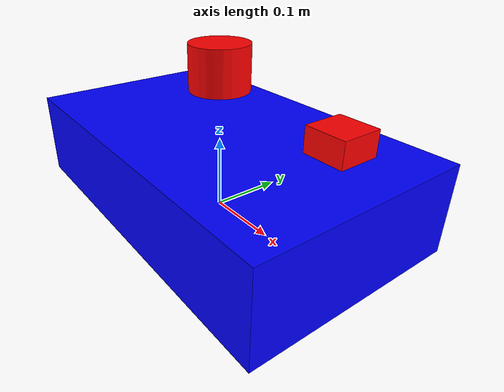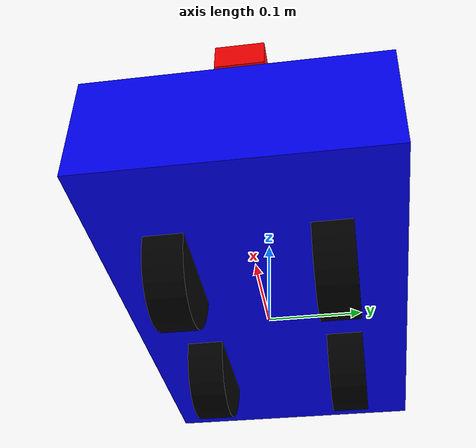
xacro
<?xml version="1.0"?>
<robot name="jetracer" xmlns:xacro="http://www.ros.org/wiki/xacro">

  <!-- Include properties and materials -->
  <xacro:include filename="jetracer_materials.xacro"/>
  <xacro:include filename="jetracer_properties.xacro"/>

  <!-- Base link -->
  <link name="base_link">
    <visual>
      <origin xyz="0 0 0" rpy="0 0 0"/>
      <geometry>
        <box size="0.001 0.001 0.001"/>
      </geometry>
    </visual>
  </link>

  <!-- Chassis -->
  <link name="chassis">
    <inertial>
      <mass value="${chassis_mass}"/>
      <origin xyz="0 0 0" rpy="0 0 0"/>
      <inertia ixx="${chassis_ixx}" ixy="0" ixz="0"
               iyy="${chassis_iyy}" iyz="0" izz="${chassis_izz}"/>
    </inertial>
    <visual>
      <origin xyz="0 0 0" rpy="0 0 0"/>
      <geometry>
        <box size="${chassis_length} ${chassis_width} ${chassis_height}"/>
      </geometry>
      <material name="blue"/>
    </visual>
    <collision>
      <origin xyz="0 0 0" rpy="0 0 0"/>
      <geometry>
        <box size="${chassis_length} ${chassis_width} ${chassis_height}"/>
      </geometry>
    </collision>
  </link>

  <joint name="base_to_chassis" type="fixed">
    <parent link="base_link"/>
    <child link="chassis"/>
    <origin xyz="0 0 ${chassis_height/2}" rpy="0 0 0"/>
  </joint>

  <!-- Front wheels (steered) -->
  <xacro:macro name="front_wheel" params="side reflect">
    <link name="front_wheel_${side}">
      <inertial>
        <mass value="${wheel_mass}"/>
        <origin xyz="0 0 0" rpy="${pi/2} 0 0"/>
        <inertia ixx="${wheel_ixx}" ixy="0" ixz="0"
                 iyy="${wheel_iyy}" iyz="0" izz="${wheel_izz}"/>
      </inertial>
      <visual>
        <origin xyz="0 0 0" rpy="${pi/2} 0 0"/>
        <geometry>
          <cylinder radius="${wheel_radius}" length="${wheel_width}"/>
        </geometry>
        <material name="black"/>
      </visual>
      <collision>
        <origin xyz="0 0 0" rpy="${pi/2} 0 0"/>
        <geometry>
          <cylinder radius="${wheel_radius}" length="${wheel_width}"/>
        </geometry>
      </collision>
    </link>

    <link name="front_steering_hinge_${side}">
      <inertial>
        <mass value="0.1"/>
        <origin xyz="0 0 0" rpy="0 0 0"/>
        <inertia ixx="0.001" ixy="0" ixz="0"
                 iyy="0.001" iyz="0" izz="0.001"/>
      </inertial>
    </link>

    <joint name="front_steering_${side}" type="revolute">
      <parent link="chassis"/>
      <child link="front_steering_hinge_${side}"/>
      <origin xyz="${wheelbase/2} ${reflect*track_width/2} ${-chassis_height/2}" rpy="0 0 0"/>
      <axis xyz="0 0 1"/>
      <limit lower="${-max_steering_angle}" upper="${max_steering_angle}"
             effort="100" velocity="1.0"/>
    </joint>

    <joint name="front_wheel_${side}_joint" type="continuous">
      <parent link="front_steering_hinge_${side}"/>
      <child link="front_wheel_${side}"/>
      <origin xyz="0 0 0" rpy="0 0 0"/>
      <axis xyz="0 1 0"/>
    </joint>
  </xacro:macro>

  <xacro:front_wheel side="left" reflect="1"/>
  <xacro:front_wheel side="right" reflect="-1"/>

  <!-- Rear wheels (driven) -->
  <xacro:macro name="rear_wheel" params="side reflect">
    <link name="rear_wheel_${side}">
      <inertial>
        <mass value="${wheel_mass}"/>
        <origin xyz="0 0 0" rpy="${pi/2} 0 0"/>
        <inertia ixx="${wheel_ixx}" ixy="0" ixz="0"
                 iyy="${wheel_iyy}" iyz="0" izz="${wheel_izz}"/>
      </inertial>
      <visual>
        <origin xyz="0 0 0" rpy="${pi/2} 0 0"/>
        <geometry>
          <cylinder radius="${wheel_radius}" length="${wheel_width}"/>
        </geometry>
        <material name="black"/>
      </visual>
      <collision>
        <origin xyz="0 0 0" rpy="${pi/2} 0 0"/>
        <geometry>
          <cylinder radius="${wheel_radius}" length="${wheel_width}"/>
        </geometry>
      </collision>
    </link>

    <joint name="rear_wheel_${side}_joint" type="continuous">
      <parent link="chassis"/>
      <child link="rear_wheel_${side}"/>
      <origin xyz="${-wheelbase/2} ${reflect*track_width/2} ${-chassis_height/2}" rpy="0 0 0"/>
      <axis xyz="0 1 0"/>
    </joint>
  </xacro:macro>

  <xacro:rear_wheel side="left" reflect="1"/>
  <xacro:rear_wheel side="right" reflect="-1"/>

  <!-- Camera -->
  <link name="camera_link">
    <inertial>
      <mass value="0.1"/>
      <origin xyz="0 0 0" rpy="0 0 0"/>
      <inertia ixx="0.001" ixy="0" ixz="0"
               iyy="0.001" iyz="0" izz="0.001"/>
    </inertial>
    <visual>
      <origin xyz="0 0 0" rpy="0 0 0"/>
      <geometry>
        <box size="0.05 0.05 0.03"/>
      </geometry>
      <material name="red"/>
    </visual>
    <collision>
      <origin xyz="0 0 0" rpy="0 0 0"/>
      <geometry>
        <box size="0.05 0.05 0.03"/>
      </geometry>
    </collision>
  </link>

  <joint name="camera_joint" type="fixed">
    <parent link="chassis"/>
    <child link="camera_link"/>
    <origin xyz="${chassis_length/2 - 0.05} 0 ${chassis_height/2 + 0.05}" rpy="0 0 0"/>
  </joint>

  <!-- IMU -->
  <link name="imu_link">
    <inertial>
      <mass value="0.01"/>
      <origin xyz="0 0 0" rpy="0 0 0"/>
      <inertia ixx="0.0001" ixy="0" ixz="0"
               iyy="0.0001" iyz="0" izz="0.0001"/>
    </inertial>
  </link>

  <joint name="imu_joint" type="fixed">
    <parent link="chassis"/>
    <child link="imu_link"/>
    <origin xyz="0 0 0" rpy="0 0 0"/>
  </joint>

  <!-- Lidar -->
  <link name="laser_link">
    <inertial>
      <mass value="0.1"/>
      <origin xyz="0 0 0" rpy="0 0 0"/>
      <inertia ixx="0.001" ixy="0" ixz="0"
               iyy="0.001" iyz="0" izz="0.001"/>
    </inertial>
    <visual>
      <origin xyz="0 0 0" rpy="0 0 0"/>
      <geometry>
        <cylinder radius="0.04" length="0.06"/>
      </geometry>
      <material name="red"/>
    </visual>
    <collision>
      <origin xyz="0 0 0" rpy="0 0 0"/>
      <geometry>
        <cylinder radius="0.04" length="0.06"/>
      </geometry>
    </collision>
  </link>

  <joint name="laser_joint" type="fixed">
    <parent link="chassis"/>
    <child link="laser_link"/>
    <origin xyz="0 0 ${chassis_height/2 + 0.08}" rpy="0 0 0"/>
  </joint>

  <!-- Gazebo specific configurations -->
  <gazebo reference="chassis">
    <material>Gazebo/Blue</material>
  </gazebo>

  <gazebo reference="front_wheel_left">
    <material>Gazebo/Black</material>
    <mu1>1.0</mu1>
    <mu2>1.0</mu2>
  </gazebo>

  <gazebo reference="front_wheel_right">
    <material>Gazebo/Black</material>
    <mu1>1.0</mu1>
    <mu2>1.0</mu2>
  </gazebo>

  <gazebo reference="rear_wheel_left">
    <material>Gazebo/Black</material>
    <mu1>1.0</mu1>
    <mu2>1.0</mu2>
  </gazebo>

  <gazebo reference="rear_wheel_right">
    <material>Gazebo/Black</material>
    <mu1>1.0</mu1>
    <mu2>1.0</mu2>
  </gazebo>

  <gazebo reference="camera_link">
    <material>Gazebo/Red</material>
    <sensor type="camera" name="camera">
      <update_rate>30.0</update_rate>
      <camera name="head">
        <horizontal_fov>1.3962634</horizontal_fov>
        <image>
          <width>800</width>
          <height>600</height>
          <format>R8G8B8</format>
        </image>
        <clip>
          <near>0.02</near>
          <far>300</far>
        </clip>
      </camera>
    </sensor>
  </gazebo>

  <gazebo reference="imu_link">
    <sensor name="imu_sensor" type="imu">
      <always_on>true</always_on>
      <update_rate>50</update_rate>
    </sensor>
  </gazebo>

  <gazebo reference="laser_link">
    <material>Gazebo/Red</material>
    <sensor type="gpu_lidar" name="laser">
      <update_rate>10</update_rate>
      <topic>/scan</topic>
      <ray>
        <scan>
          <horizontal>
            <samples>360</samples>
            <resolution>1</resolution>
            <min_angle>-3.14159</min_angle>
            <max_angle>3.14159</max_angle>
          </horizontal>
          <vertical>
            <samples>1</samples>
            <resolution>1</resolution>
            <min_angle>0</min_angle>
            <max_angle>0</max_angle>
          </vertical>
        </scan>
        <range>
          <min>0.1</min>
          <max>10.0</max>
          <resolution>0.01</resolution>
        </range>
      </ray>
      <plugin filename="gz-sim-sensors-system" name="gz::sim::systems::Sensors">
        <render_engine>ogre2</render_engine>
      </plugin>
    </sensor>
  </gazebo>

  <!-- Ackermann steering plugin for Gazebo Harmonic -->
  <gazebo>
    <plugin filename="gz-sim-ackermann-steering-system" name="gz::sim::systems::AckermannSteering">
      <front_left_joint>front_wheel_left_joint</front_left_joint>
      <front_right_joint>front_wheel_right_joint</front_right_joint>
      <rear_left_joint>rear_wheel_left_joint</rear_left_joint>
      <rear_right_joint>rear_wheel_right_joint</rear_right_joint>
      <left_steering_joint>front_steering_left</left_steering_joint>
      <right_steering_joint>front_steering_right</right_steering_joint>
      <kingpin_width>0.3</kingpin_width>
      <wheelbase>0.25</wheelbase>
      <steering_limit>0.5236</steering_limit>
      <wheel_separation>0.3</wheel_separation>
      <wheel_radius>0.05</wheel_radius>
      <topic>/cmd_vel</topic>
      <odom_publish_frequency>50</odom_publish_frequency>
    </plugin>
  </gazebo>

  <!-- Joint state publisher plugin -->
  <gazebo>
    <plugin filename="gz-sim-joint-state-publisher-system" name="gz::sim::systems::JointStatePublisher">
      <joint_name>front_steering_left</joint_name>
      <joint_name>front_steering_right</joint_name>
      <joint_name>front_wheel_left_joint</joint_name>
      <joint_name>front_wheel_right_joint</joint_name>
      <joint_name>rear_wheel_left_joint</joint_name>
      <joint_name>rear_wheel_right_joint</joint_name>
    </plugin>
  </gazebo>

</robot>

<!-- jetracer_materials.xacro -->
<robot xmlns:xacro="http://www.ros.org/wiki/xacro">

  <!-- Material definitions -->
  <material name="blue">
    <color rgba="0.0 0.0 1.0 1.0"/>
  </material>

  <material name="red">
    <color rgba="1.0 0.0 0.0 1.0"/>
  </material>

  <material name="green">
    <color rgba="0.0 1.0 0.0 1.0"/>
  </material>

  <material name="black">
    <color rgba="0.0 0.0 0.0 1.0"/>
  </material>

  <material name="white">
    <color rgba="1.0 1.0 1.0 1.0"/>
  </material>

  <material name="gray">
    <color rgba="0.5 0.5 0.5 1.0"/>
  </material>

  <material name="orange">
    <color rgba="1.0 0.5 0.0 1.0"/>
  </material>

  <material name="yellow">
    <color rgba="1.0 1.0 0.0 1.0"/>
  </material>

</robot>

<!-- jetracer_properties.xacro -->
<robot xmlns:xacro="http://www.ros.org/wiki/xacro">

  <!-- Physical properties for JetRacer robot -->

  <!-- Chassis properties -->
  <xacro:property name="chassis_length" value="0.50"/>
  <xacro:property name="chassis_width" value="0.30"/>
  <xacro:property name="chassis_height" value="0.12"/>
  <xacro:property name="chassis_mass" value="2.0"/>

  <!-- Chassis inertia (approximated as box) -->
  <xacro:property name="chassis_ixx" value="${(chassis_mass/12) * (chassis_width*chassis_width + chassis_height*chassis_height)}"/>
  <xacro:property name="chassis_iyy" value="${(chassis_mass/12) * (chassis_length*chassis_length + chassis_height*chassis_height)}"/>
  <xacro:property name="chassis_izz" value="${(chassis_mass/12) * (chassis_length*chassis_length + chassis_width*chassis_width)}"/>

  <!-- Wheel properties -->
  <xacro:property name="wheel_radius" value="0.06"/>
  <xacro:property name="wheel_width" value="0.04"/>
  <xacro:property name="wheel_mass" value="0.1"/>

  <!-- Wheel inertia (approximated as cylinder) -->
  <xacro:property name="wheel_ixx" value="${(wheel_mass/12) * (3*wheel_radius*wheel_radius + wheel_width*wheel_width)}"/>
  <xacro:property name="wheel_iyy" value="${(wheel_mass/2) * wheel_radius*wheel_radius}"/>
  <xacro:property name="wheel_izz" value="${(wheel_mass/12) * (3*wheel_radius*wheel_radius + wheel_width*wheel_width)}"/>

  <!-- Vehicle geometry -->
  <xacro:property name="wheelbase" value="0.20"/>  <!-- Distance between front and rear axles -->
  <xacro:property name="track_width" value="0.16"/>  <!-- Distance between left and right wheels -->

  <!-- Steering properties -->
  <xacro:property name="max_steering_angle" value="0.6458"/>  <!-- ~37 degrees in radians -->

</robot>
